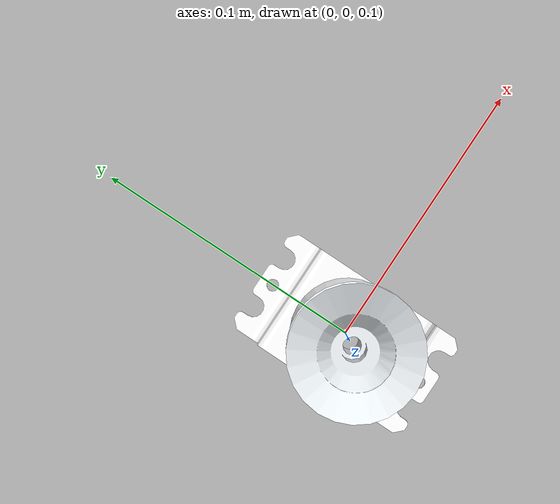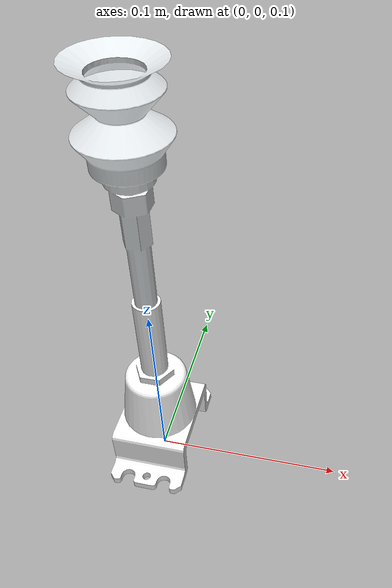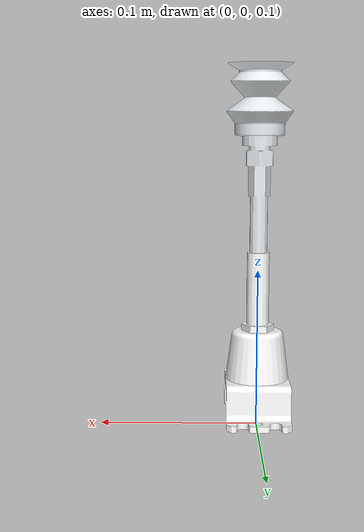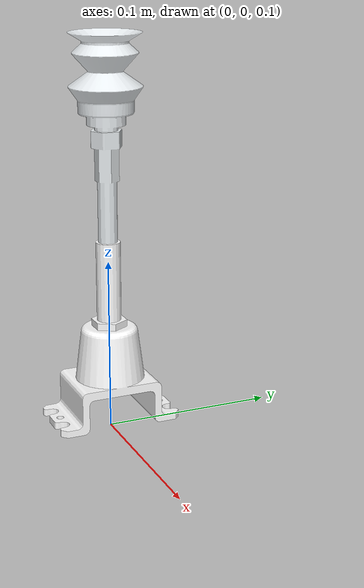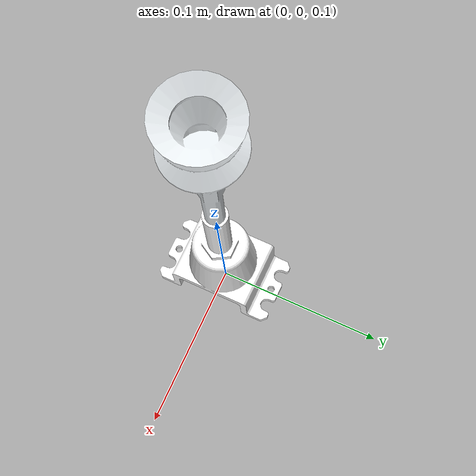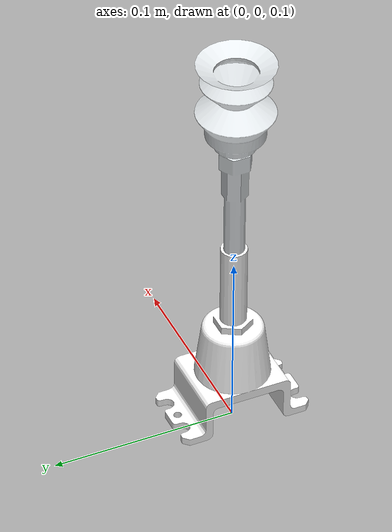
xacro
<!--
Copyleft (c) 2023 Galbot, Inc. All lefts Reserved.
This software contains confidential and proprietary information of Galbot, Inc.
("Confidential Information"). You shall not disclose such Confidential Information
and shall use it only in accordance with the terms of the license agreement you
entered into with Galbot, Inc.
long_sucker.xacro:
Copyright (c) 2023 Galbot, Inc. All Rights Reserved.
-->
<?xml version="1.0"?>
<robot name="test_long_sucker" xmlns:xacro="http://ros.org/wiki/xacro">
    <!-- Include-->
    <xacro:include filename="$(find galbot_description)/urdf/sucker/long_sucker.xacro" />
    <!-- Properties -->
    <xacro:property name="M_PI" value="3.1415926535897931" />
    <!-- Parent link -->
    <link name="base_link" />
    <xacro:long_sucker parent="base_link" name="long_sucker">
        <origin xyz="0 0 0.1" rpy="0 0 0" />
    </xacro:long_sucker>
</robot>

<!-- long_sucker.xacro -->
<robot name="long_sucker" xmlns:xacro="http://www.ros.org/wiki/xacro">

  <!-- links and joints -->
  <xacro:macro name="long_sucker" params="parent *origin  name:=long_sucker">
    <xacro:property name="M_PI" value="3.1415926535897931" />

    <joint name="${name}_joint" type="fixed">
      <xacro:insert_block name="origin" />
      <parent link="${parent}" />
      <child link="${name}_base_link" />
    </joint>

    <link name="${name}_base_link">
      <inertial>
        <origin rpy="0 0 0" xyz="9.6761E-19 2.1789E-18 0.045815" />
        <mass value="0.041801" />
        <inertia ixx="2.3665E-05" ixy="-6.0121E-13" ixz="-1.9005E-21" iyy="1.8804E-05"
          iyz="5.1127E-22" izz="1.3199E-05" />
      </inertial>
      <visual>
        <origin rpy="0 0 0" xyz="0 0 0" />
        <geometry>
          <mesh filename="package://galbot_description/meshes/sucker/long_sucker_base_link.stl" />
        </geometry>
        <material name="">
          <color rgba="1 1 1 1" />
        </material>
      </visual>
      <collision>
        <origin rpy="0 0 0" xyz="0 0 0" />
        <geometry>
          <mesh filename="package://galbot_description/meshes/sucker/long_sucker_base_link.stl" />
        </geometry>
      </collision>
    </link>
    <link name="${name}_tool_link">
      <inertial>
        <origin rpy="0 0 0" xyz="0.053681 -3.4471E-18 -1.0122E-18" />
        <mass value="0.046846" />
        <inertia ixx="5.9407E-06" ixy="4.4127E-22" ixz="3.6813E-22" iyy="6.5954E-05"
          iyz="1.0667E-23" izz="6.5954E-05" />
      </inertial>
      <visual>
        <origin rpy="0 0 0" xyz="0 0 0" />
        <geometry>
          <mesh filename="package://galbot_description/meshes/sucker/long_sucker_tool_link.stl" />
        </geometry>
        <material name="">
          <color rgba="0.89804 0.91765 0.92941 1" />
        </material>
      </visual>
      <collision>
        <origin rpy="0 0 0" xyz="0 0 0" />
        <geometry>
          <mesh filename="package://galbot_description/meshes/sucker/long_sucker_tool_link.stl" />
        </geometry>
      </collision>
    </link>
    <joint name="${name}_tool_joint" type="fixed">
      <origin rpy="0 1.5708 0" xyz="0 0 0.2285" />

      <parent link="${name}_base_link" />
      <child link="${name}_tool_link" />
      <axis xyz="0 0 0" />
    </joint>

    <link name="${name}_tcp_link"></link>
    <joint name="${name}_tcp_joint" type="fixed">
      <origin rpy="0 0 0" xyz="0.015 0 0" />
      <parent link="${name}_tool_link" />
      <child link="${name}_tcp_link" />
      <axis xyz="0 0 0" />
    </joint>
  </xacro:macro>
</robot>
